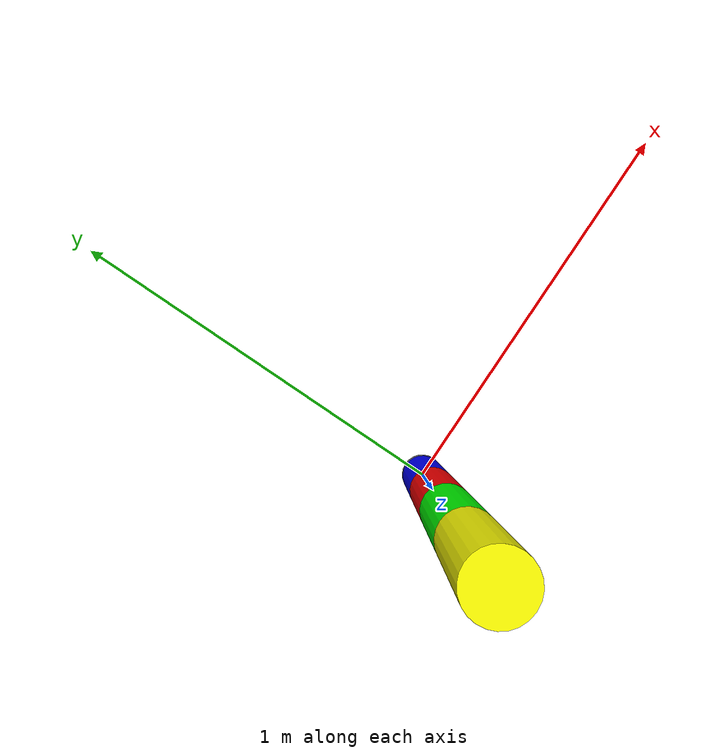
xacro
<?xml version="1.0"?>
<robot name="four_link_robot" xmlns:xacro="http://ros.org/wiki/xacro">

  <!-- Link 1 (Base link) -->
  <link name="base_link">
    <visual>
      <origin xyz="0 0 0" rpy="0 0 0"/>
      <geometry>
        <cylinder radius="0.05" length="0.1"/>
      </geometry>
      <material name="gray">
        <color rgba="0.5 0.5 0.5 1.0"/>
      </material>
    </visual>
  </link>

  <!-- Joint 1 -->
  <joint name="joint1" type="revolute">
    <parent link="base_link"/>
    <child link="link1"/>
    <origin xyz="0 0 0.05" rpy="0 0 0"/>
    <axis xyz="0 0 1"/>
    <limit lower="-3.14" upper="3.14" effort="10" velocity="1.0"/>
  </joint>

  <!-- Link 1 -->
  <link name="link1">
    <visual>
      <origin xyz="0 0 0.5" rpy="0 0 0"/>
      <geometry>
        <cylinder radius="0.05" length="1.0"/>
      </geometry>
      <material name="blue">
        <color rgba="0 0 1 1.0"/>
      </material>
    </visual>
  </link>

  <!-- Joint 2 -->
  <joint name="joint2" type="revolute">
    <parent link="link1"/>
    <child link="link2"/>
    <origin xyz="0 0 1.0" rpy="0 0 0"/>
    <axis xyz="0 1 0"/>
    <limit lower="-3.14" upper="3.14" effort="10" velocity="1.0"/>
  </joint>

  <!-- Link 2 -->
  <link name="link2">
    <visual>
      <origin xyz="0 0 0.5" rpy="0 0 0"/>
      <geometry>
        <cylinder radius="0.05" length="1.0"/>
      </geometry>
      <material name="red">
        <color rgba="1 0 0 1.0"/>
      </material>
    </visual>
  </link>

  <!-- Joint 3 -->
  <joint name="joint3" type="revolute">
    <parent link="link2"/>
    <child link="link3"/>
    <origin xyz="0 0 1.0" rpy="0 0 0"/>
    <axis xyz="0 0 1"/>
    <limit lower="-3.14" upper="3.14" effort="10" velocity="1.0"/>
  </joint>

  <!-- Link 3 -->
  <link name="link3">
    <visual>
      <origin xyz="0 0 0.5" rpy="0 0 0"/>
      <geometry>
        <cylinder radius="0.05" length="1.0"/>
      </geometry>
      <material name="green">
        <color rgba="0 1 0 1.0"/>
      </material>
    </visual>
  </link>

  <!-- Joint 4 -->
  <joint name="joint4" type="revolute">
    <parent link="link3"/>
    <child link="link4"/>
    <origin xyz="0 0 1.0" rpy="0 0 0"/>
    <axis xyz="0 1 0"/>
    <limit lower="-3.14" upper="3.14" effort="10" velocity="1.0"/>
  </joint>

  <!-- Link 4 (end-effector) -->
  <link name="link4">
    <visual>
      <origin xyz="0 0 0.5" rpy="0 0 0"/>
      <geometry>
        <cylinder radius="0.05" length="1.0"/>
      </geometry>
      <material name="yellow">
        <color rgba="1 1 0 1.0"/>
      </material>
    </visual>
  </link>

</robot>
